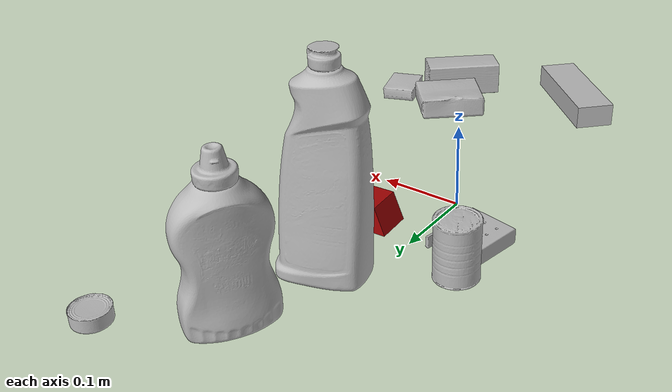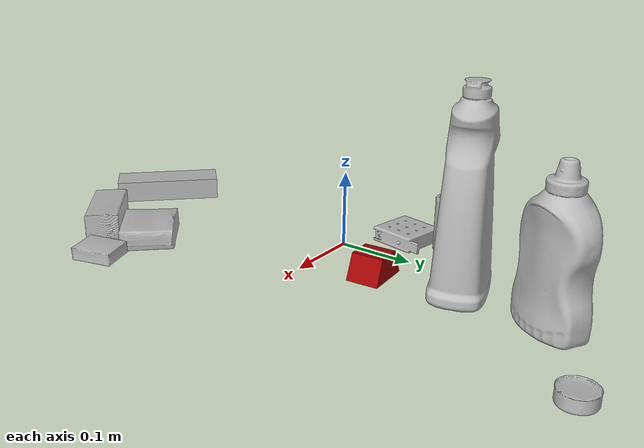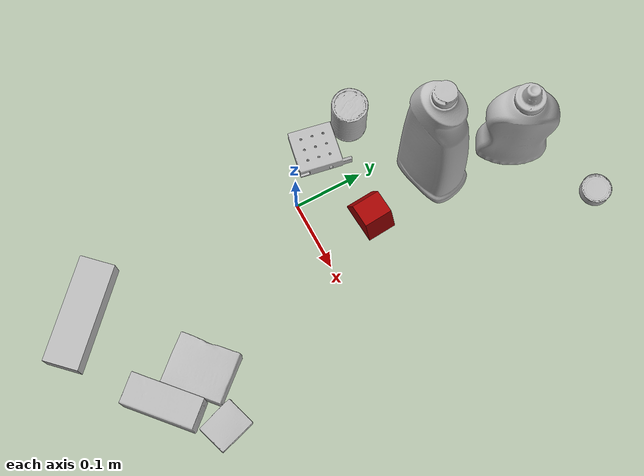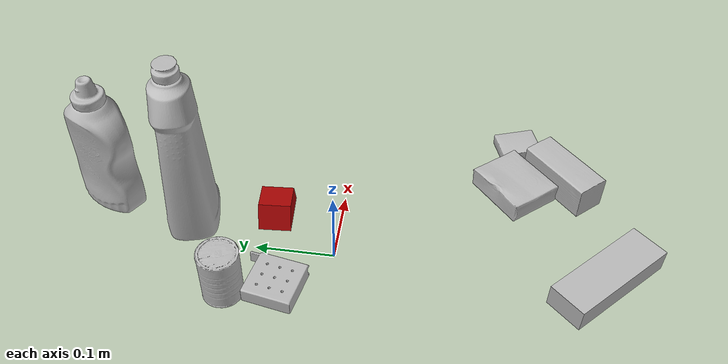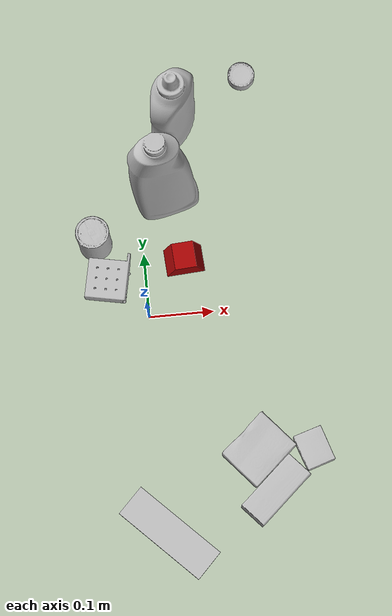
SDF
<sdf version="1.4">
  <world name="default">
    <light name="light1" type="point">
      <pose>0 0 1 0 0 0</pose>
      <diffuse>3 3 3 1</diffuse>
      <specular>3 3 3 1</specular>
    </light>
    <light name="light2" type="point">
      <pose>0 0.5 2 0 0 0</pose>
      <diffuse>1 1 1 1</diffuse>
      <specular>1 1 1 1</specular>
    </light>
    <light name="light3" type="point">
      <pose>0 0.5 2 0 0 0</pose>
      <diffuse>3 3 3 1</diffuse>
      <specular>3 3 3 1</specular>
    </light>
    <scene>
      <ambient>0.7 0.7 0.7</ambient>
    </scene>
    <model name="bottle1">
      <link name="link_bottle1">
        <collision name="default">
          <geometry>
            <mesh>
              <uri>model://mustard_bottle/collision_meshes/collision.obj</uri>
              <scale>1.0 1.0 1.0</scale>
            </mesh>
          </geometry>
          <surface>
            <friction>
              <ode>
                <mu>0.5</mu>
                <mu2>0.5</mu2>
              </ode>
            </friction>
          <contact>
        <ode>
            <max_vel>0</max_vel>
            <min_depth>0.0001</min_depth>
            <kp>1e8</kp>
        </ode>
    </contact></surface>
        </collision>
        <visual name="default">
          <geometry>
            <mesh>
              <uri>model://mustard_bottle/visual_meshes/visual.dae</uri>
              <scale>1.0 1.0 1.0</scale>
            </mesh>
          </geometry>
        </visual>
        <inertial>
          <mass>0.6762011647224426</mass>
          <pose>0.0005032454500906169 -0.00015647402324248105 -0.0174757931381464 0.0004182330054410876 0.0009465793907204819 0.02485376893997312</pose>
          <inertia>
            <ixx>0.001877718</ixx>
            <iyy>0.0016475386</iyy>
            <izz>0.0004948735</izz>
            <ixy>0</ixy>
            <ixz>0</ixz>
            <iyz>0</iyz>
          </inertia>
        </inertial>
      </link>
      <pose>0.06528554111719131 0.30639079213142395 0.09615200757980347 1.4925360962594426e-05 1.684973188929204e-05 2.5946780250343937</pose>
    </model>
    <model name="bottle2">
      <link name="link_bottle2">
        <collision name="default">
          <geometry>
            <mesh>
              <uri>model://bleach_cleanser/collision_meshes/collision.obj</uri>
              <scale>1.0 1.0 1.0</scale>
            </mesh>
          </geometry>
          <surface>
            <friction>
              <ode>
                <mu>0.5</mu>
                <mu2>0.5</mu2>
              </ode>
            </friction>
          <contact>
        <ode>
            <max_vel>0</max_vel>
            <min_depth>0.0001</min_depth>
            <kp>1e8</kp>
        </ode>
    </contact></surface>
        </collision>
        <visual name="default">
          <geometry>
            <mesh>
              <uri>model://bleach_cleanser/visual_meshes/visual.dae</uri>
              <scale>1.0 1.0 1.0</scale>
            </mesh>
          </geometry>
        </visual>
        <inertial>
          <mass>1.3947629928588867</mass>
          <pose>0.00012193183647468686 0.0037838828284293413 -0.02442161738872528 -0.07381670616230765 0.000420115363335565 -0.006875068774372656</pose>
          <inertia>
            <ixx>0.0067885136</ixx>
            <iyy>0.006325901</iyy>
            <izz>0.0011606595</izz>
            <ixy>0</ixy>
            <ixz>0</ixz>
            <iyz>0</iyz>
          </inertia>
        </inertial>
      </link>
      <pose>0.0421418771147728 0.19092850387096405 0.12578411400318146 -0.00019964651035996218 1.5928502181914824e-05 1.8505671435910078</pose>
    </model>
    <model name="toy1">
      <link name="link_toy1">
        <collision name="default">
          <geometry>
            <mesh>
              <uri>model://nine_hole_peg_test/collision_meshes/collision.obj</uri>
              <scale>0.5 0.5 0.5</scale>
            </mesh>
          </geometry>
          <surface>
            <friction>
              <ode>
                <mu>0.5</mu>
                <mu2>0.5</mu2>
              </ode>
            </friction>
          <contact>
        <ode>
            <max_vel>0</max_vel>
            <min_depth>0.0001</min_depth>
            <kp>1e8</kp>
        </ode>
    </contact></surface>
        </collision>
        <visual name="default">
          <geometry>
            <mesh>
              <uri>model://nine_hole_peg_test/visual_meshes/visual.dae</uri>
              <scale>0.5 0.5 0.5</scale>
            </mesh>
          </geometry>
        </visual>
        <inertial>
          <mass>0.11556825786828995</mass>
          <pose>-0.0023086932487785816 -0.004823807626962662 1.3230343029135838e-05 -0.0014666797633517714 0.0007194158879745651 -0.6342419016734399</pose>
          <inertia>
            <ixx>4.5177487e-05</ixx>
            <iyy>4.2181746e-05</iyy>
            <izz>7.9164296e-05</izz>
            <ixy>0</ixy>
            <ixz>0</ixz>
            <iyz>0</iyz>
          </inertia>
        </inertial>
      </link>
      <pose>-0.05570897459983826 0.06622985750436783 0.01038549654185772 -1.0058146616967615e-08 7.247082171991937e-09 -0.18583904332824536</pose>
    </model>
    <model name="toy2">
      <link name="link_toy2">
        <collision name="default">
          <geometry>
            <mesh>
              <uri>model://prism/collision_meshes/collision.obj</uri>
              <scale>0.5 0.5 0.5</scale>
            </mesh>
          </geometry>
          <surface>
            <friction>
              <ode>
                <mu>0.5</mu>
                <mu2>0.5</mu2>
              </ode>
            </friction>
          <contact>
        <ode>
            <max_vel>0</max_vel>
            <min_depth>0.0001</min_depth>
            <kp>1e8</kp>
        </ode>
    </contact></surface>
        </collision>
        <visual name="default">
          <geometry>
            <mesh>
              <uri>model://prism/visual_meshes/visual.dae</uri>
              <scale>0.5 0.5 0.5</scale>
            </mesh>
          </geometry>
        </visual>
        <inertial>
          <mass>0.033433690667152405</mass>
          <pose>-4.9267986469203606e-05 -2.480786349678965e-07 -0.001693455153144896 0.0 0.00655918030046738 0.0</pose>
          <inertia>
            <ixx>7.543374e-06</ixx>
            <iyy>9.116264e-06</iyy>
            <izz>1.1166334e-05</izz>
            <ixy>0</ixy>
            <ixz>0</ixz>
            <iyz>0</iyz>
          </inertia>
        </inertial>
      </link>
      <pose>0.061392202973365784 0.08451349288225174 0.016085002571344376 -1.840315912941121e-08 -1.7063830203027903e-08 0.069749473663262</pose>
    </model>
    <model name="can1">
      <link name="link_can1">
        <collision name="default">
          <geometry>
            <mesh>
              <uri>model://master_chef_can/collision_meshes/collision.obj</uri>
              <scale>0.5 0.5 0.5</scale>
            </mesh>
          </geometry>
          <surface>
            <friction>
              <ode>
                <mu>0.5</mu>
                <mu2>0.5</mu2>
              </ode>
            </friction>
          <contact>
        <ode>
            <max_vel>0</max_vel>
            <min_depth>0.0001</min_depth>
            <kp>1e8</kp>
        </ode>
    </contact></surface>
        </collision>
        <visual name="default">
          <geometry>
            <mesh>
              <uri>model://master_chef_can/visual_meshes/visual.dae</uri>
              <scale>0.5 0.5 0.5</scale>
            </mesh>
          </geometry>
        </visual>
        <inertial>
          <mass>0.10766725987195969</mass>
          <pose>-4.661964703700505e-05 1.3926853625889635e-07 -5.079878610558808e-05 -0.0017995160150511523 0.000647916474058074 -0.6102670332280266</pose>
          <inertia>
            <ixx>6.319339e-05</ixx>
            <iyy>6.2728286e-05</iyy>
            <izz>3.491918e-05</izz>
            <ixy>0</ixy>
            <ixz>0</ixz>
            <iyz>0</iyz>
          </inertia>
        </inertial>
      </link>
      <pose>-0.0732598826289177 0.12271162867546082 0.03530198708176613 -1.4828022520623854e-06 -1.3509845119314223e-06 2.571903122592333</pose>
    </model>
    <model name="can2">
      <link name="link_can2">
        <collision name="default">
          <geometry>
            <mesh>
              <uri>model://tuna_fish_can/collision_meshes/collision.obj</uri>
              <scale>0.5 0.5 0.5</scale>
            </mesh>
          </geometry>
          <surface>
            <friction>
              <ode>
                <mu>0.5</mu>
                <mu2>0.5</mu2>
              </ode>
            </friction>
          <contact>
        <ode>
            <max_vel>0</max_vel>
            <min_depth>0.0001</min_depth>
            <kp>1e8</kp>
        </ode>
    </contact></surface>
        </collision>
        <visual name="default">
          <geometry>
            <mesh>
              <uri>model://tuna_fish_can/visual_meshes/visual.dae</uri>
              <scale>0.5 0.5 0.5</scale>
            </mesh>
          </geometry>
        </visual>
        <inertial>
          <mass>0.02740846574306488</mass>
          <pose>-2.0361561837489717e-05 -7.256384378706571e-06 -0.0005269024986773729 -0.0017944791545750336 0.000171617609773777 0.24054039995463303</pose>
          <inertia>
            <ixx>3.7056664e-06</ixx>
            <iyy>3.6902204e-06</iyy>
            <izz>6.3409243e-06</izz>
            <ixy>0</ixy>
            <ixz>0</ixz>
            <iyz>0</iyz>
          </inertia>
        </inertial>
      </link>
      <pose>0.17985714972019196 0.3783974349498749 0.00851999968290329 3.6490976587833626e-09 2.068096315998148e-08 1.2539717776268915</pose>
    </model>
    <model name="box1">
      <link name="link_box1">
        <collision name="default">
          <geometry>
            <mesh>
              <uri>model://gelatin_box/collision_meshes/collision.obj</uri>
              <scale>1.0 1.0 1.0</scale>
            </mesh>
          </geometry>
          <surface>
            <friction>
              <ode>
                <mu>0.5</mu>
                <mu2>0.5</mu2>
              </ode>
            </friction>
          <contact>
        <ode>
            <max_vel>0</max_vel>
            <min_depth>0.0001</min_depth>
            <kp>1e8</kp>
        </ode>
    </contact></surface>
        </collision>
        <visual name="default">
          <geometry>
            <mesh>
              <uri>model://gelatin_box/visual_meshes/visual.dae</uri>
              <scale>1.0 1.0 1.0</scale>
            </mesh>
          </geometry>
        </visual>
        <inertial>
          <mass>0.1693437397480011</mass>
          <pose>0.0004319618456065655 0.00011156872642459348 -0.00036403213744051754 -0.0010503721973280913 -0.004755817758053359 0.01644055760876268</pose>
          <inertia>
            <ixx>0.00011954286</ixx>
            <iyy>8.538885e-05</iyy>
            <izz>0.0001819709</izz>
            <ixy>0</ixy>
            <ixz>0</ixz>
            <iyz>0</iyz>
          </inertia>
        </inertial>
      </link>
      <pose>0.14591822028160095 -0.22045966982841492 0.015168312937021255 0.005597495281860008 -0.007304632412004679 2.276652477185423</pose>
    </model>
    <model name="box2">
      <link name="link_box2">
        <collision name="default">
          <geometry>
            <mesh>
              <uri>model://pudding_box/collision_meshes/collision.obj</uri>
              <scale>0.5 0.5 0.5</scale>
            </mesh>
          </geometry>
          <surface>
            <friction>
              <ode>
                <mu>0.5</mu>
                <mu2>0.5</mu2>
              </ode>
            </friction>
          <contact>
        <ode>
            <max_vel>0</max_vel>
            <min_depth>0.0001</min_depth>
            <kp>1e8</kp>
        </ode>
    </contact></surface>
        </collision>
        <visual name="default">
          <geometry>
            <mesh>
              <uri>model://pudding_box/visual_meshes/visual.dae</uri>
              <scale>0.5 0.5 0.5</scale>
            </mesh>
          </geometry>
        </visual>
        <inertial>
          <mass>0.04695427790284157</mass>
          <pose>0.00024474109522998333 0.00040339428232982755 -0.0002594413817860186 0.005213102262859105 -0.0066037982576109796 0.020079825159299278</pose>
          <inertia>
            <ixx>1.3269848e-05</ixx>
            <iyy>8.9280475e-06</iyy>
            <izz>1.95964e-05</izz>
            <ixy>0</ixy>
            <ixz>0</ixz>
            <iyz>0</iyz>
          </inertia>
        </inertial>
      </link>
      <pose>0.22792159020900726 -0.2256377637386322 0.009862900711596012 0.02234988142171307 -0.011390819470706207 -2.8394448303148296</pose>
    </model>
    <model name="box3">
      <link name="link_box3">
        <collision name="default">
          <geometry>
            <mesh>
              <uri>model://wood_block/collision_meshes/collision.obj</uri>
              <scale>0.5 0.5 0.5</scale>
            </mesh>
          </geometry>
          <surface>
            <friction>
              <ode>
                <mu>0.5</mu>
                <mu2>0.5</mu2>
              </ode>
            </friction>
          <contact>
        <ode>
            <max_vel>0</max_vel>
            <min_depth>0.0001</min_depth>
            <kp>1e8</kp>
        </ode>
    </contact></surface>
        </collision>
        <visual name="default">
          <geometry>
            <mesh>
              <uri>model://wood_block/visual_meshes/visual.dae</uri>
              <scale>0.5 0.5 0.5</scale>
            </mesh>
          </geometry>
        </visual>
        <inertial>
          <mass>0.2591375410556793</mass>
          <pose>-2.9066577553749084e-06 -0.00028540476341731846 0.00013204291462898254 -0.05221026556657302 -0.005192695801982805 -0.006861378038707315</pose>
          <inertia>
            <ixx>8.669131e-05</ixx>
            <iyy>0.00027385785</iyy>
            <izz>0.00027283354</izz>
            <ixy>0</ixy>
            <ixz>0</ixz>
            <iyz>0</iyz>
          </inertia>
        </inertial>
      </link>
      <pose>0.16359397768974304 -0.2836734652519226 0.022629261016845703 -0.0052084726998781125 0.005718724009302447 0.7301416785096219</pose>
    </model>
    <model name="box4">
      <link name="link_box4">
        <collision name="default">
          <geometry>
            <mesh>
              <uri>model://jenga/collision_meshes/collision.obj</uri>
              <scale>1.0 1.0 1.0</scale>
            </mesh>
          </geometry>
          <surface>
            <friction>
              <ode>
                <mu>0.5</mu>
                <mu2>0.5</mu2>
              </ode>
            </friction>
          <contact>
        <ode>
            <max_vel>0</max_vel>
            <min_depth>0.0001</min_depth>
            <kp>1e8</kp>
        </ode>
    </contact></surface>
        </collision>
        <visual name="default">
          <geometry>
            <mesh>
              <uri>model://jenga/visual_meshes/visual.dae</uri>
              <scale>1.0 1.0 1.0</scale>
            </mesh>
          </geometry>
        </visual>
        <inertial>
          <mass>0.14610815048217773</mass>
          <pose>-2.502855807051674e-07 -0.00010250010382151231 -4.092339804628864e-05 0.0 -7.342155186052628e-07 0.0</pose>
          <inertia>
            <ixx>4.043167e-05</ixx>
            <iyy>0.0002739639</iyy>
            <izz>0.00029247976</izz>
            <ixy>0</ixy>
            <ixz>0</ixz>
            <iyz>0</iyz>
          </inertia>
        </inertial>
      </link>
      <pose>0.0024366045836359262 -0.3303893506526947 0.014999998733401299 -5.316326341733301e-09 4.438531782033066e-09 2.366143019440246</pose>
    </model>
  <physics type="ode">
      <max_contacts>50</max_contacts>
      <ode>
        <solver>
          <type>quick</type>
          <iters>75</iters>
        </solver>
        <constraints>
          <contact_max_correcting_vel>0</contact_max_correcting_vel>
          <contact_surface_layer>0</contact_surface_layer>
        </constraints>
      </ode>
    </physics></world>
</sdf>
